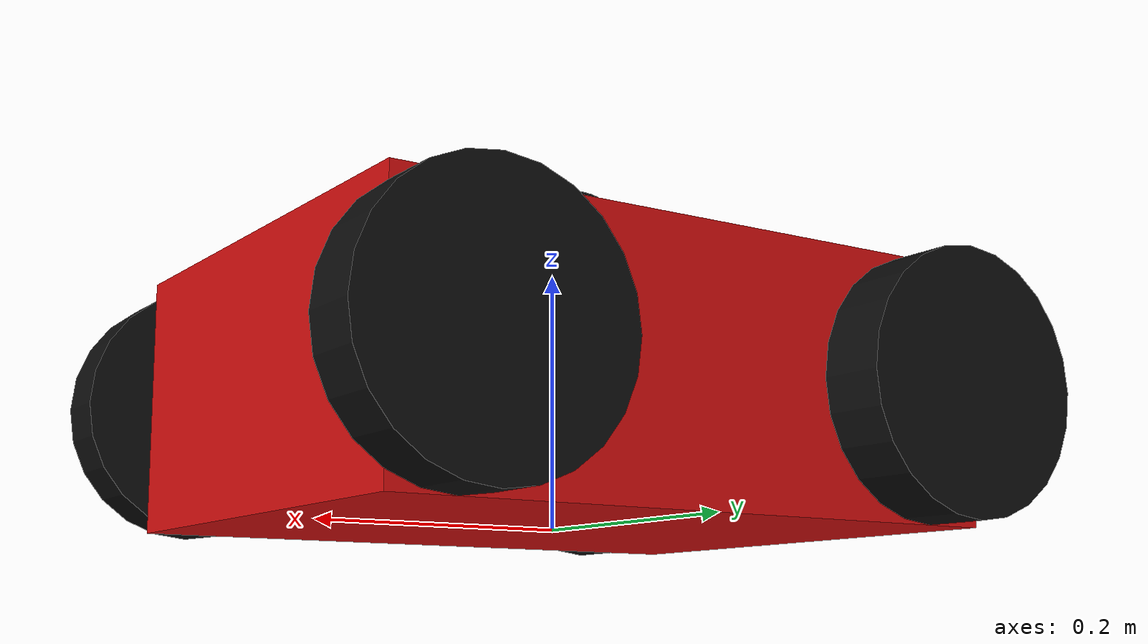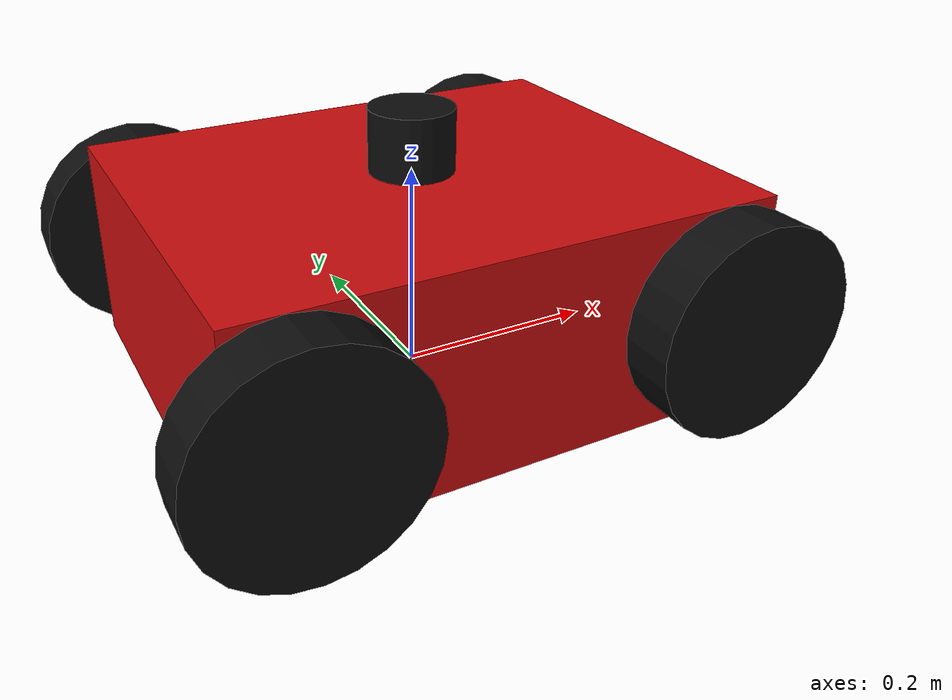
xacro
<?xml version="1.0"?>
<robot name="ladybug_bot" xmlns:xacro="http://www.ros.org/wiki/xacro">

  <xacro:property name="chassis_length" value="0.5"/>
  <xacro:property name="chassis_width"  value="0.4"/>
  <xacro:property name="chassis_height" value="0.2"/>
  <xacro:property name="chassis_mass"   value="18.0"/> <!-- rest of 22.1kg is wheels/electronics -->

  <xacro:property name="wheel_radius" value="0.1"/>
  <xacro:property name="wheel_width"  value="0.05"/>
  <xacro:property name="wheel_mass"   value="1.0"/>

  <xacro:property name="wheel_separation" value="0.45"/> <!-- left-right gap -->
  <xacro:property name="wheelbase"        value="0.4"/>  <!-- front-rear gap -->

  <xacro:property name="lidar_radius" value="0.04"/>
  <xacro:property name="lidar_height" value="0.06"/>

  <material name="ladybug_red">
    <color rgba="0.8 0.05 0.05 1.0"/>
  </material>
  <material name="black">
    <color rgba="0.05 0.05 0.05 1.0"/>
  </material>

  <!-- ================= base_footprint (ground reference) ================= -->
  <link name="base_footprint"/>

  <joint name="base_joint" type="fixed">
    <parent link="base_footprint"/>
    <child link="chassis"/>
    <origin xyz="0 0 ${wheel_radius}" rpy="0 0 0"/>
  </joint>

  <!-- ========================= chassis ========================= -->
  <link name="chassis">
    <visual>
      <origin xyz="0 0 0" rpy="0 0 0"/>
      <geometry>
        <box size="${chassis_length} ${chassis_width} ${chassis_height}"/>
      </geometry>
      <material name="ladybug_red"/>
    </visual>
    <collision>
      <origin xyz="0 0 0" rpy="0 0 0"/>
      <geometry>
        <box size="${chassis_length} ${chassis_width} ${chassis_height}"/>
      </geometry>
    </collision>
    <inertial>
      <mass value="${chassis_mass}"/>
      <origin xyz="0 0 0"/>
      <inertia ixx="0.30" ixy="0" ixz="0" iyy="0.40" iyz="0" izz="0.50"/>
    </inertial>
  </link>

  <!-- ========================= wheel macro ========================= -->
  <xacro:macro name="wheel" params="prefix x_reflect y_reflect">
    <link name="${prefix}_wheel">
      <visual>
        <origin xyz="0 0 0" rpy="${pi/2} 0 0"/>
        <geometry>
          <cylinder radius="${wheel_radius}" length="${wheel_width}"/>
        </geometry>
        <material name="black"/>
      </visual>
      <collision>
        <origin xyz="0 0 0" rpy="${pi/2} 0 0"/>
        <geometry>
          <cylinder radius="${wheel_radius}" length="${wheel_width}"/>
        </geometry>
      </collision>
      <inertial>
        <mass value="${wheel_mass}"/>
        <origin xyz="0 0 0"/>
        <inertia ixx="0.01" ixy="0" ixz="0" iyy="0.01" iyz="0" izz="0.01"/>
      </inertial>
    </link>

    <joint name="${prefix}_wheel_joint" type="continuous">
      <parent link="chassis"/>
      <child link="${prefix}_wheel"/>
      <origin xyz="${x_reflect*wheelbase/2} ${y_reflect*wheel_separation/2} 0" rpy="0 0 0"/>
      <axis xyz="0 1 0"/>
    </joint>

    <transmission name="${prefix}_wheel_trans">
      <type>transmission_interface/SimpleTransmission</type>
      <joint name="${prefix}_wheel_joint">
        <hardwareInterface>hardware_interface/VelocityJointInterface</hardwareInterface>
      </joint>
      <actuator name="${prefix}_wheel_motor">
        <hardwareInterface>hardware_interface/VelocityJointInterface</hardwareInterface>
        <mechanicalReduction>1</mechanicalReduction>
      </actuator>
    </transmission>
  </xacro:macro>

  <!-- rear wheels: actuated by the two window-glass motors -->
  <xacro:wheel prefix="rear_left"   x_reflect="-1" y_reflect="1"/>
  <xacro:wheel prefix="rear_right"  x_reflect="-1" y_reflect="-1"/>
  <!-- front wheels: chain-linked to rear motors on each side -> passive -->
  <xacro:wheel prefix="front_left"  x_reflect="1"  y_reflect="1"/>
  <xacro:wheel prefix="front_right" x_reflect="1"  y_reflect="-1"/>

  <!-- ========================= LiDAR ========================= -->
  <link name="lidar_link">
    <visual>
      <geometry>
        <cylinder radius="${lidar_radius}" length="${lidar_height}"/>
      </geometry>
      <material name="black"/>
    </visual>
    <collision>
      <geometry>
        <cylinder radius="${lidar_radius}" length="${lidar_height}"/>
      </geometry>
    </collision>
    <inertial>
      <mass value="0.2"/>
      <origin xyz="0 0 0"/>
      <inertia ixx="0.001" ixy="0" ixz="0" iyy="0.001" iyz="0" izz="0.001"/>
    </inertial>
  </link>

  <joint name="lidar_joint" type="fixed">
    <parent link="chassis"/>
    <child link="lidar_link"/>
    <origin xyz="0 0 ${chassis_height/2 + lidar_height/2}" rpy="0 0 0"/>
  </joint>

  <xacro:include filename="$(find ladybug_bot_description)/urdf/ladybug_bot.gazebo.xacro"/>

</robot>
